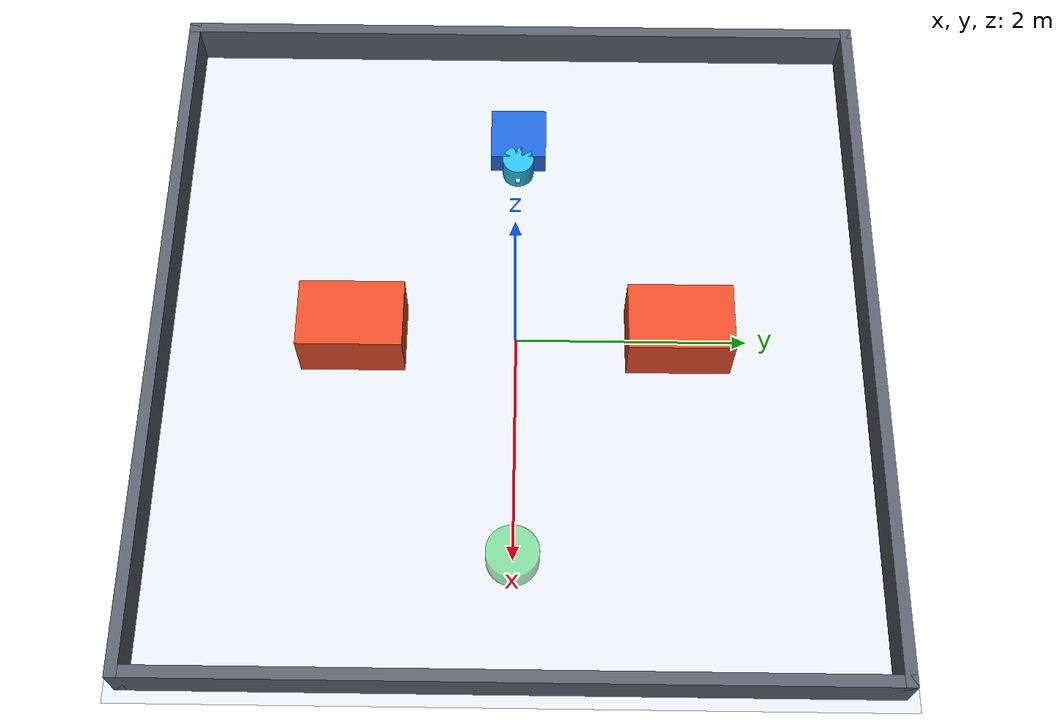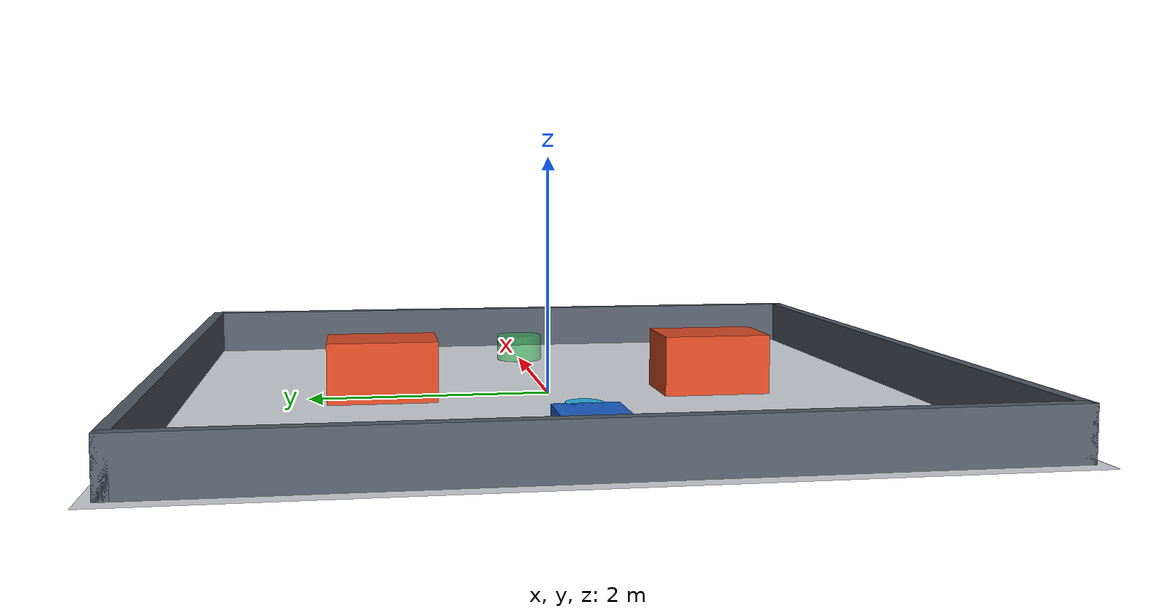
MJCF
<mujoco model="raycast1">
  <compiler angle="degree"/>
  <option timestep="0.005" integrator="implicitfast"/>

  <visual>
    <global offwidth="900" offheight="900"/>
    <headlight ambient="0.5 0.5 0.5" diffuse="0.6 0.6 0.6"/>
  </visual>

  <worldbody>
    <light pos="0 0 5" dir="0 0 -1"/>
    <camera name="top" pos="0 0 9" xyaxes="1 0 0 0 1 0" fovy="45"/>

    <!-- Arena: 6 x 6 meters inside the walls. Box sizes are half-extents. -->
    <geom name="floor" type="plane" size="3.2 3.2 0.1" rgba="0.88 0.90 0.93 1"/>
    <geom name="wall_north" type="box" pos="0 3.05 0.2" size="3.1 0.05 0.2" rgba="0.35 0.38 0.43 1"/>
    <geom name="wall_south" type="box" pos="0 -3.05 0.2" size="3.1 0.05 0.2" rgba="0.35 0.38 0.43 1"/>
    <geom name="wall_east" type="box" pos="3.05 0 0.2" size="0.05 3.1 0.2" rgba="0.35 0.38 0.43 1"/>
    <geom name="wall_west" type="box" pos="-3.05 0 0.2" size="0.05 3.1 0.2" rgba="0.35 0.38 0.43 1"/>

    <!-- The robot faces local +X, toward the obstacle and target. -->
    <!-- Two slides followed by yaw allow planar motion without tipping. -->
    <body name="robot" pos="-2 0 0.12">
      <joint name="robot_x" type="slide" axis="1 0 0" damping="0.5"/>
      <joint name="robot_y" type="slide" axis="0 1 0" damping="0.5"/>
      <joint name="robot_yaw" type="hinge" axis="0 0 1" damping="0.1"/>
      <geom name="robot_base" type="box" size="0.25 0.25 0.12" mass="1" rgba="0.12 0.40 0.85 1"/>
      <!-- A vertical cylinder looks circular from above. -->
      <body name="head" pos="0.28 0 0">
        <geom name="robot_head" type="cylinder" size="0.14 0.12" mass="0.2" rgba="0.15 0.75 0.95 1"/>
        <!-- Future ray origin, just beyond the front surface of the head. -->
        <body name="robot_indicator" pos="0.15 0 0">
          <site name="sensor_origin" type="sphere" size="0.025" rgba="1 1 1 1"/>
        </body>
      </body>
    </body>

    <!-- Two fixed obstacles matching search_with_obstacles. -->
    <geom name="obstacle_1" type="box" pos="0 -1.4 0.25" size="0.30 0.45 0.25" rgba="0.90 0.30 0.15 1"/>
    <geom name="obstacle_2" type="box" pos="0 1.4 0.25" size="0.30 0.45 0.25" rgba="0.90 0.30 0.15 1"/>

    <!-- Visible to horizontal rays, but does not generate physical contacts. -->
    <geom name="target" type="cylinder" pos="2 0 0.12" size="0.22 0.12"
          contype="0" conaffinity="0" rgba="0.15 0.80 0.30 0.5"/>
  </worldbody>

  <!-- Velocity servos apply bounded forces; contacts can block the robot. -->
  <!-- The controller converts one forward command into world X/Y setpoints. -->
  <actuator>
    <velocity name="drive_x" joint="robot_x" kv="20" ctrlrange="-0.6 0.6" forcerange="-20 20"/>
    <velocity name="drive_y" joint="robot_y" kv="20" ctrlrange="-0.6 0.6" forcerange="-20 20"/>
    <velocity name="turn" joint="robot_yaw" kv="5" ctrlrange="-1.2 1.2" forcerange="-5 5"/>
  </actuator>
</mujoco>
